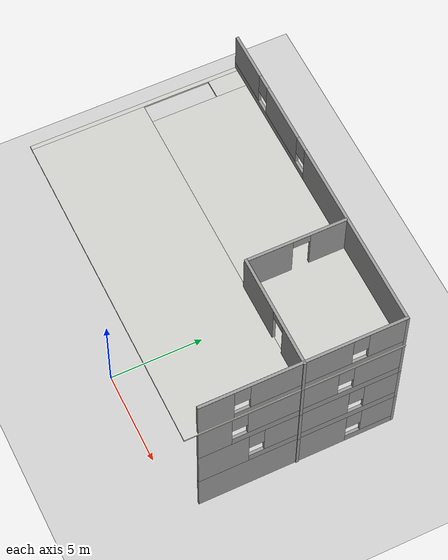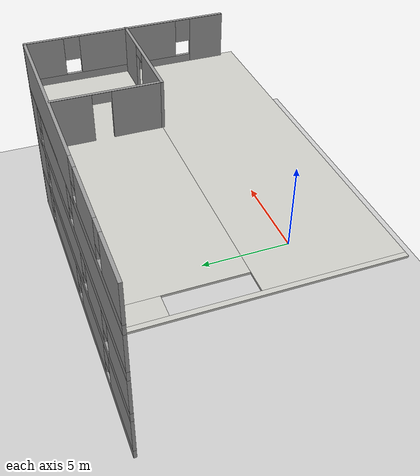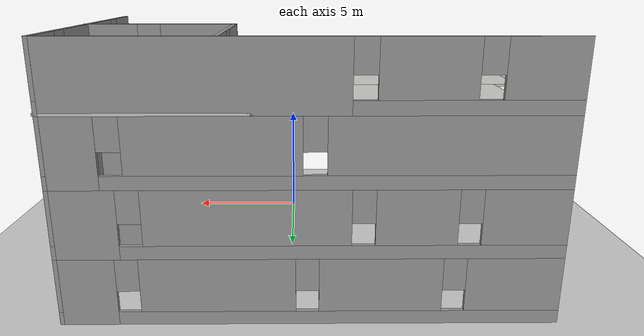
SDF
<sdf version="1.7">
 <world name="default">
  <model name="ground_plane">
   <static>1</static>
   <link name="link">
    <collision name="collision">
     <geometry><plane><normal>0 0 1</normal><size>100 100</size></plane></geometry>
     <surface>
      <contact><collide_bitmask>65535</collide_bitmask></contact>
      <friction><ode><mu>100</mu><mu2>50</mu2></ode></friction>
     </surface>
    </collision>
    <visual name="visual">
     <cast_shadows>0</cast_shadows>
     <geometry><plane><normal>0 0 1</normal><size>100 100</size></plane></geometry>
     <material>
      <script><uri>file://media/materials/scripts/gazebo.material</uri><name>Gazebo/Grey</name></script>
     </material>
    </visual>
   </link>
  </model>
  <model name="saglam_yeni_bina1">
   <pose>-0.684997 5.87917 0 0 -0 0</pose>
   <link name="Floor_6">
    <pose>0.000156 0.0375 7.5 0 -0 0</pose>
    <visual name="Floor_6_Visual_0">
     <pose>-8.65977 0 0.05 0 -0 0</pose>
     <geometry><box><size>0.226666 11.2072 0.1</size></box></geometry>
     <material>
      <script><uri>file://media/materials/scripts/gazebo.material</uri><name>Gazebo/CeilingTiled</name></script>
      <ambient>1 1 1 1</ambient>
     </material>
     <meta><layer>3</layer></meta>
    </visual>
    <collision name="Floor_6_Collision_0">
     <geometry><box><size>0.226666 11.2072 0.1</size></box></geometry>
     <pose>-8.65977 0 0.05 0 -0 0</pose>
    </collision>
    <visual name="Floor_6_Visual_1">
     <pose>0.113333 -2.62454 0.05 0 -0 0</pose>
     <geometry><box><size>17.3195 5.95813 0.1</size></box></geometry>
     <material>
      <script><uri>file://media/materials/scripts/gazebo.material</uri><name>Gazebo/CeilingTiled</name></script>
      <ambient>1 1 1 1</ambient>
     </material>
     <meta><layer>3</layer></meta>
    </visual>
    <collision name="Floor_6_Collision_1">
     <geometry><box><size>17.3195 5.95813 0.1</size></box></geometry>
     <pose>0.113333 -2.62454 0.05 0 -0 0</pose>
    </collision>
    <visual name="Floor_6_Visual_2">
     <pose>0.613333 2.97906 0.05 0 -0 0</pose>
     <geometry><box><size>16.3195 5.24907 0.1</size></box></geometry>
     <material>
      <script><uri>file://media/materials/scripts/gazebo.material</uri><name>Gazebo/CeilingTiled</name></script>
      <ambient>1 1 1 1</ambient>
     </material>
     <meta><layer>3</layer></meta>
    </visual>
    <collision name="Floor_6_Collision_2">
     <geometry><box><size>16.3195 5.24907 0.1</size></box></geometry>
     <pose>0.613333 2.97906 0.05 0 -0 0</pose>
    </collision>
    <visual name="Floor_6_Visual_3">
     <pose>-8.04644 4.72906 0.05 0 -0 0</pose>
     <geometry><box><size>1 1.74907 0.1</size></box></geometry>
     <material>
      <script><uri>file://media/materials/scripts/gazebo.material</uri><name>Gazebo/CeilingTiled</name></script>
      <ambient>1 1 1 1</ambient>
     </material>
     <meta><layer>3</layer></meta>
    </visual>
    <collision name="Floor_6_Collision_3">
     <geometry><box><size>1 1.74907 0.1</size></box></geometry>
     <pose>-8.04644 4.72906 0.05 0 -0 0</pose>
    </collision>
   </link>
   <link name="Wall_33">
    <pose>8.65205 0.3911 0 0 -0 1.5708</pose>
    <visual name="Wall_33_Visual_0">
     <pose>-1.34119 0 1.25 0 -0 0</pose>
     <geometry><box><size>7.81763 0.15 2.5</size></box></geometry>
     <material>
      <script><uri>file://media/materials/scripts/gazebo.material</uri><name>Gazebo/Grey</name></script>
      <ambient>1 1 1 1</ambient>
     </material>
     <meta><layer>0</layer></meta>
    </visual>
    <collision name="Wall_33_Collision_0">
     <geometry><box><size>7.81763 0.15 2.5</size></box></geometry>
     <pose>-1.34119 0 1.25 0 -0 0</pose>
    </collision>
    <visual name="Wall_33_Visual_1">
     <pose>3.90881 0 0.25 0 -0 0</pose>
     <geometry><box><size>2.68237 0.15 0.5</size></box></geometry>
     <material>
      <script><uri>file://media/materials/scripts/gazebo.material</uri><name>Gazebo/Grey</name></script>
      <ambient>1 1 1 1</ambient>
     </material>
     <meta><layer>0</layer></meta>
    </visual>
    <collision name="Wall_33_Collision_1">
     <geometry><box><size>2.68237 0.15 0.5</size></box></geometry>
     <pose>3.90881 0 0.25 0 -0 0</pose>
    </collision>
    <visual name="Wall_33_Visual_2">
     <pose>4.30881 0 1.5 0 -0 0</pose>
     <geometry><box><size>1.88237 0.15 2</size></box></geometry>
     <material>
      <script><uri>file://media/materials/scripts/gazebo.material</uri><name>Gazebo/Grey</name></script>
      <ambient>1 1 1 1</ambient>
     </material>
     <meta><layer>0</layer></meta>
    </visual>
    <collision name="Wall_33_Collision_2">
     <geometry><box><size>1.88237 0.15 2</size></box></geometry>
     <pose>4.30881 0 1.5 0 -0 0</pose>
    </collision>
    <visual name="Wall_33_Visual_3">
     <pose>2.96763 0 1.9 0 -0 0</pose>
     <geometry><box><size>0.8 0.15 1.2</size></box></geometry>
     <material>
      <script><uri>file://media/materials/scripts/gazebo.material</uri><name>Gazebo/Grey</name></script>
      <ambient>1 1 1 1</ambient>
     </material>
     <meta><layer>0</layer></meta>
    </visual>
    <collision name="Wall_33_Collision_3">
     <geometry><box><size>0.8 0.15 1.2</size></box></geometry>
     <pose>2.96763 0 1.9 0 -0 0</pose>
    </collision>
   </link>
   <link name="Wall_34">
    <pose>-0.022952 5.5661 0 0 -0 3.14159</pose>
    <visual name="Wall_34_Visual_0">
     <pose>-7.70483 0 1.25 0 -0 0</pose>
     <geometry><box><size>2.09034 0.15 2.5</size></box></geometry>
     <material>
      <script><uri>file://media/materials/scripts/gazebo.material</uri><name>Gazebo/Grey</name></script>
      <ambient>1 1 1 1</ambient>
     </material>
     <meta><layer>0</layer></meta>
    </visual>
    <collision name="Wall_34_Collision_0">
     <geometry><box><size>2.09034 0.15 2.5</size></box></geometry>
     <pose>-7.70483 0 1.25 0 -0 0</pose>
    </collision>
    <visual name="Wall_34_Visual_1">
     <pose>1.04517 0 0.25 0 -0 0</pose>
     <geometry><box><size>15.4097 0.15 0.5</size></box></geometry>
     <material>
      <script><uri>file://media/materials/scripts/gazebo.material</uri><name>Gazebo/Grey</name></script>
      <ambient>1 1 1 1</ambient>
     </material>
     <meta><layer>0</layer></meta>
    </visual>
    <collision name="Wall_34_Collision_1">
     <geometry><box><size>15.4097 0.15 0.5</size></box></geometry>
     <pose>1.04517 0 0.25 0 -0 0</pose>
    </collision>
    <visual name="Wall_34_Visual_2">
     <pose>-3.16502 0 1.5 0 -0 0</pose>
     <geometry><box><size>5.3893 0.15 2</size></box></geometry>
     <material>
      <script><uri>file://media/materials/scripts/gazebo.material</uri><name>Gazebo/Grey</name></script>
      <ambient>1 1 1 1</ambient>
     </material>
     <meta><layer>0</layer></meta>
    </visual>
    <collision name="Wall_34_Collision_2">
     <geometry><box><size>5.3893 0.15 2</size></box></geometry>
     <pose>-3.16502 0 1.5 0 -0 0</pose>
    </collision>
    <visual name="Wall_34_Visual_3">
     <pose>2.46883 0 1.5 0 -0 0</pose>
     <geometry><box><size>4.2784 0.15 2</size></box></geometry>
     <material>
      <script><uri>file://media/materials/scripts/gazebo.material</uri><name>Gazebo/Grey</name></script>
      <ambient>1 1 1 1</ambient>
     </material>
     <meta><layer>0</layer></meta>
    </visual>
    <collision name="Wall_34_Collision_3">
     <geometry><box><size>4.2784 0.15 2</size></box></geometry>
     <pose>2.46883 0 1.5 0 -0 0</pose>
    </collision>
    <visual name="Wall_34_Visual_4">
     <pose>7.07902 0 1.5 0 -0 0</pose>
     <geometry><box><size>3.34197 0.15 2</size></box></geometry>
     <material>
      <script><uri>file://media/materials/scripts/gazebo.material</uri><name>Gazebo/Grey</name></script>
      <ambient>1 1 1 1</ambient>
     </material>
     <meta><layer>0</layer></meta>
    </visual>
    <collision name="Wall_34_Collision_4">
     <geometry><box><size>3.34197 0.15 2</size></box></geometry>
     <pose>7.07902 0 1.5 0 -0 0</pose>
    </collision>
    <visual name="Wall_34_Visual_5">
     <pose>-6.25967 0 1.9 0 -0 0</pose>
     <geometry><box><size>0.8 0.15 1.2</size></box></geometry>
     <material>
      <script><uri>file://media/materials/scripts/gazebo.material</uri><name>Gazebo/Grey</name></script>
      <ambient>1 1 1 1</ambient>
     </material>
     <meta><layer>0</layer></meta>
    </visual>
    <collision name="Wall_34_Collision_5">
     <geometry><box><size>0.8 0.15 1.2</size></box></geometry>
     <pose>-6.25967 0 1.9 0 -0 0</pose>
    </collision>
    <visual name="Wall_34_Visual_6">
     <pose>-0.070366 0 1.9 0 -0 0</pose>
     <geometry><box><size>0.8 0.15 1.2</size></box></geometry>
     <material>
      <script><uri>file://media/materials/scripts/gazebo.material</uri><name>Gazebo/Grey</name></script>
      <ambient>1 1 1 1</ambient>
     </material>
     <meta><layer>0</layer></meta>
    </visual>
    <collision name="Wall_34_Collision_6">
     <geometry><box><size>0.8 0.15 1.2</size></box></geometry>
     <pose>-0.070366 0 1.9 0 -0 0</pose>
    </collision>
    <visual name="Wall_34_Visual_7">
     <pose>5.00803 0 1.9 0 -0 0</pose>
     <geometry><box><size>0.8 0.15 1.2</size></box></geometry>
     <material>
      <script><uri>file://media/materials/scripts/gazebo.material</uri><name>Gazebo/Grey</name></script>
      <ambient>1 1 1 1</ambient>
     </material>
     <meta><layer>0</layer></meta>
    </visual>
    <collision name="Wall_34_Collision_7">
     <geometry><box><size>0.8 0.15 1.2</size></box></geometry>
     <pose>5.00803 0 1.9 0 -0 0</pose>
    </collision>
   </link>
   <link name="Wall_43">
    <pose>2.84826 2.91988 0 0 -0 1.5708</pose>
    <visual name="Wall_43_Visual_0">
     <pose>-1.19905 0 1.25 0 -0 0</pose>
     <geometry><box><size>2.8519 0.15 2.5</size></box></geometry>
     <material>
      <script><uri>file://media/materials/scripts/gazebo.material</uri><name>Gazebo/Grey</name></script>
      <ambient>1 1 1 1</ambient>
     </material>
     <meta><layer>0</layer></meta>
    </visual>
    <collision name="Wall_43_Collision_0">
     <geometry><box><size>2.8519 0.15 2.5</size></box></geometry>
     <pose>-1.19905 0 1.25 0 -0 0</pose>
    </collision>
    <visual name="Wall_43_Visual_1">
     <pose>1.87595 0 1.25 0 -0 0</pose>
     <geometry><box><size>1.4981 0.15 2.5</size></box></geometry>
     <material>
      <script><uri>file://media/materials/scripts/gazebo.material</uri><name>Gazebo/Grey</name></script>
      <ambient>1 1 1 1</ambient>
     </material>
     <meta><layer>0</layer></meta>
    </visual>
    <collision name="Wall_43_Collision_1">
     <geometry><box><size>1.4981 0.15 2.5</size></box></geometry>
     <pose>1.87595 0 1.25 0 -0 0</pose>
    </collision>
    <visual name="Wall_43_Visual_2">
     <pose>0.6769 0 2.25 0 -0 0</pose>
     <geometry><box><size>0.9 0.15 0.5</size></box></geometry>
     <material>
      <script><uri>file://media/materials/scripts/gazebo.material</uri><name>Gazebo/Grey</name></script>
      <ambient>1 1 1 1</ambient>
     </material>
     <meta><layer>0</layer></meta>
    </visual>
    <collision name="Wall_43_Collision_2">
     <geometry><box><size>0.9 0.15 0.5</size></box></geometry>
     <pose>0.6769 0 2.25 0 -0 0</pose>
    </collision>
   </link>
   <link name="Wall_46">
    <pose>5.77326 0.369877 0 0 -0 0</pose>
    <visual name="Wall_46_Visual_0">
     <pose>-1.49327 0 1.25 0 -0 0</pose>
     <geometry><box><size>3.01345 0.15 2.5</size></box></geometry>
     <material>
      <script><uri>file://media/materials/scripts/gazebo.material</uri><name>Gazebo/Grey</name></script>
      <ambient>1 1 1 1</ambient>
     </material>
     <meta><layer>0</layer></meta>
    </visual>
    <collision name="Wall_46_Collision_0">
     <geometry><box><size>3.01345 0.15 2.5</size></box></geometry>
     <pose>-1.49327 0 1.25 0 -0 0</pose>
    </collision>
    <visual name="Wall_46_Visual_1">
     <pose>1.95673 0 1.25 0 -0 0</pose>
     <geometry><box><size>2.08655 0.15 2.5</size></box></geometry>
     <material>
      <script><uri>file://media/materials/scripts/gazebo.material</uri><name>Gazebo/Grey</name></script>
      <ambient>1 1 1 1</ambient>
     </material>
     <meta><layer>0</layer></meta>
    </visual>
    <collision name="Wall_46_Collision_1">
     <geometry><box><size>2.08655 0.15 2.5</size></box></geometry>
     <pose>1.95673 0 1.25 0 -0 0</pose>
    </collision>
    <visual name="Wall_46_Visual_2">
     <pose>0.463449 0 2.25 0 -0 0</pose>
     <geometry><box><size>0.9 0.15 0.5</size></box></geometry>
     <material>
      <script><uri>file://media/materials/scripts/gazebo.material</uri><name>Gazebo/Grey</name></script>
      <ambient>1 1 1 1</ambient>
     </material>
     <meta><layer>0</layer></meta>
    </visual>
    <collision name="Wall_46_Collision_2">
     <geometry><box><size>0.9 0.15 0.5</size></box></geometry>
     <pose>0.463449 0 2.25 0 -0 0</pose>
    </collision>
   </link>
   <link name="Wall_50">
    <pose>8.65205 0.3911 2.5 0 -0 1.5708</pose>
    <visual name="Wall_50_Visual_0">
     <pose>-3.95036 0 1.25 0 -0 0</pose>
     <geometry><box><size>2.59928 0.15 2.5</size></box></geometry>
     <material>
      <script><uri>file://media/materials/scripts/gazebo.material</uri><name>Gazebo/Grey</name></script>
      <ambient>1 1 1 1</ambient>
     </material>
     <meta><layer>1</layer></meta>
    </visual>
    <collision name="Wall_50_Collision_0">
     <geometry><box><size>2.59928 0.15 2.5</size></box></geometry>
     <pose>-3.95036 0 1.25 0 -0 0</pose>
    </collision>
    <visual name="Wall_50_Visual_1">
     <pose>1.29964 0 0.25 0 -0 0</pose>
     <geometry><box><size>7.90073 0.15 0.5</size></box></geometry>
     <material>
      <script><uri>file://media/materials/scripts/gazebo.material</uri><name>Gazebo/Grey</name></script>
      <ambient>1 1 1 1</ambient>
     </material>
     <meta><layer>1</layer></meta>
    </visual>
    <collision name="Wall_50_Collision_1">
     <geometry><box><size>7.90073 0.15 0.5</size></box></geometry>
     <pose>1.29964 0 0.25 0 -0 0</pose>
    </collision>
    <visual name="Wall_50_Visual_2">
     <pose>0.34812 0 1.5 0 -0 0</pose>
     <geometry><box><size>4.39769 0.15 2</size></box></geometry>
     <material>
      <script><uri>file://media/materials/scripts/gazebo.material</uri><name>Gazebo/Grey</name></script>
      <ambient>1 1 1 1</ambient>
     </material>
     <meta><layer>1</layer></meta>
    </visual>
    <collision name="Wall_50_Collision_2">
     <geometry><box><size>4.39769 0.15 2</size></box></geometry>
     <pose>0.34812 0 1.5 0 -0 0</pose>
    </collision>
    <visual name="Wall_50_Visual_3">
     <pose>4.29848 0 1.5 0 -0 0</pose>
     <geometry><box><size>1.90303 0.15 2</size></box></geometry>
     <material>
      <script><uri>file://media/materials/scripts/gazebo.material</uri><name>Gazebo/Grey</name></script>
      <ambient>1 1 1 1</ambient>
     </material>
     <meta><layer>1</layer></meta>
    </visual>
    <collision name="Wall_50_Collision_3">
     <geometry><box><size>1.90303 0.15 2</size></box></geometry>
     <pose>4.29848 0 1.5 0 -0 0</pose>
    </collision>
    <visual name="Wall_50_Visual_4">
     <pose>-2.25073 0 1.9 0 -0 0</pose>
     <geometry><box><size>0.8 0.15 1.2</size></box></geometry>
     <material>
      <script><uri>file://media/materials/scripts/gazebo.material</uri><name>Gazebo/Grey</name></script>
      <ambient>1 1 1 1</ambient>
     </material>
     <meta><layer>1</layer></meta>
    </visual>
    <collision name="Wall_50_Collision_4">
     <geometry><box><size>0.8 0.15 1.2</size></box></geometry>
     <pose>-2.25073 0 1.9 0 -0 0</pose>
    </collision>
    <visual name="Wall_50_Visual_5">
     <pose>2.94697 0 1.9 0 -0 0</pose>
     <geometry><box><size>0.8 0.15 1.2</size></box></geometry>
     <material>
      <script><uri>file://media/materials/scripts/gazebo.material</uri><name>Gazebo/Grey</name></script>
      <ambient>1 1 1 1</ambient>
     </material>
     <meta><layer>1</layer></meta>
    </visual>
    <collision name="Wall_50_Collision_5">
     <geometry><box><size>0.8 0.15 1.2</size></box></geometry>
     <pose>2.94697 0 1.9 0 -0 0</pose>
    </collision>
   </link>
   <link name="Wall_51">
    <pose>-0.022952 5.5661 2.5 0 -0 3.14159</pose>
    <visual name="Wall_51_Visual_0">
     <pose>-7.59041 0 1.25 0 -0 0</pose>
     <geometry><box><size>2.31918 0.15 2.5</size></box></geometry>
     <material>
      <script><uri>file://media/materials/scripts/gazebo.material</uri><name>Gazebo/Grey</name></script>
      <ambient>1 1 1 1</ambient>
     </material>
     <meta><layer>1</layer></meta>
    </visual>
    <collision name="Wall_51_Collision_0">
     <geometry><box><size>2.31918 0.15 2.5</size></box></geometry>
     <pose>-7.59041 0 1.25 0 -0 0</pose>
    </collision>
    <visual name="Wall_51_Visual_1">
     <pose>1.15959 0 0.25 0 -0 0</pose>
     <geometry><box><size>15.1808 0.15 0.5</size></box></geometry>
     <material>
      <script><uri>file://media/materials/scripts/gazebo.material</uri><name>Gazebo/Grey</name></script>
      <ambient>1 1 1 1</ambient>
     </material>
     <meta><layer>1</layer></meta>
    </visual>
    <collision name="Wall_51_Collision_1">
     <geometry><box><size>15.1808 0.15 0.5</size></box></geometry>
     <pose>1.15959 0 0.25 0 -0 0</pose>
    </collision>
    <visual name="Wall_51_Visual_2">
     <pose>-2.10161 0 1.5 0 -0 0</pose>
     <geometry><box><size>7.05841 0.15 2</size></box></geometry>
     <material>
      <script><uri>file://media/materials/scripts/gazebo.material</uri><name>Gazebo/Grey</name></script>
      <ambient>1 1 1 1</ambient>
     </material>
     <meta><layer>1</layer></meta>
    </visual>
    <collision name="Wall_51_Collision_2">
     <geometry><box><size>7.05841 0.15 2</size></box></geometry>
     <pose>-2.10161 0 1.5 0 -0 0</pose>
    </collision>
    <visual name="Wall_51_Visual_3">
     <pose>3.62203 0 1.5 0 -0 0</pose>
     <geometry><box><size>2.78888 0.15 2</size></box></geometry>
     <material>
      <script><uri>file://media/materials/scripts/gazebo.material</uri><name>Gazebo/Grey</name></script>
      <ambient>1 1 1 1</ambient>
     </material>
     <meta><layer>1</layer></meta>
    </visual>
    <collision name="Wall_51_Collision_3">
     <geometry><box><size>2.78888 0.15 2</size></box></geometry>
     <pose>3.62203 0 1.5 0 -0 0</pose>
    </collision>
    <visual name="Wall_51_Visual_4">
     <pose>7.28324 0 1.5 0 -0 0</pose>
     <geometry><box><size>2.93352 0.15 2</size></box></geometry>
     <material>
      <script><uri>file://media/materials/scripts/gazebo.material</uri><name>Gazebo/Grey</name></script>
      <ambient>1 1 1 1</ambient>
     </material>
     <meta><layer>1</layer></meta>
    </visual>
    <collision name="Wall_51_Collision_4">
     <geometry><box><size>2.93352 0.15 2</size></box></geometry>
     <pose>7.28324 0 1.5 0 -0 0</pose>
    </collision>
    <visual name="Wall_51_Visual_5">
     <pose>-6.03082 0 1.9 0 -0 0</pose>
     <geometry><box><size>0.8 0.15 1.2</size></box></geometry>
     <material>
      <script><uri>file://media/materials/scripts/gazebo.material</uri><name>Gazebo/Grey</name></script>
      <ambient>1 1 1 1</ambient>
     </material>
     <meta><layer>1</layer></meta>
    </visual>
    <collision name="Wall_51_Collision_5">
     <geometry><box><size>0.8 0.15 1.2</size></box></geometry>
     <pose>-6.03082 0 1.9 0 -0 0</pose>
    </collision>
    <visual name="Wall_51_Visual_6">
     <pose>1.82759 0 1.9 0 -0 0</pose>
     <geometry><box><size>0.8 0.15 1.2</size></box></geometry>
     <material>
      <script><uri>file://media/materials/scripts/gazebo.material</uri><name>Gazebo/Grey</name></script>
      <ambient>1 1 1 1</ambient>
     </material>
     <meta><layer>1</layer></meta>
    </visual>
    <collision name="Wall_51_Collision_6">
     <geometry><box><size>0.8 0.15 1.2</size></box></geometry>
     <pose>1.82759 0 1.9 0 -0 0</pose>
    </collision>
    <visual name="Wall_51_Visual_7">
     <pose>5.41648 0 1.9 0 -0 0</pose>
     <geometry><box><size>0.8 0.15 1.2</size></box></geometry>
     <material>
      <script><uri>file://media/materials/scripts/gazebo.material</uri><name>Gazebo/Grey</name></script>
      <ambient>1 1 1 1</ambient>
     </material>
     <meta><layer>1</layer></meta>
    </visual>
    <collision name="Wall_51_Collision_7">
     <geometry><box><size>0.8 0.15 1.2</size></box></geometry>
     <pose>5.41648 0 1.9 0 -0 0</pose>
    </collision>
   </link>
   <link name="Wall_56">
    <pose>2.84826 2.91988 2.5 0 -0 1.5708</pose>
    <visual name="Wall_56_Visual_0">
     <pose>-1.40575 0 1.25 0 -0 0</pose>
     <geometry><box><size>2.4385 0.15 2.5</size></box></geometry>
     <material>
      <script><uri>file://media/materials/scripts/gazebo.material</uri><name>Gazebo/Grey</name></script>
      <ambient>1 1 1 1</ambient>
     </material>
     <meta><layer>1</layer></meta>
    </visual>
    <collision name="Wall_56_Collision_0">
     <geometry><box><size>2.4385 0.15 2.5</size></box></geometry>
     <pose>-1.40575 0 1.25 0 -0 0</pose>
    </collision>
    <visual name="Wall_56_Visual_1">
     <pose>1.66925 0 1.25 0 -0 0</pose>
     <geometry><box><size>1.91151 0.15 2.5</size></box></geometry>
     <material>
      <script><uri>file://media/materials/scripts/gazebo.material</uri><name>Gazebo/Grey</name></script>
      <ambient>1 1 1 1</ambient>
     </material>
     <meta><layer>1</layer></meta>
    </visual>
    <collision name="Wall_56_Collision_1">
     <geometry><box><size>1.91151 0.15 2.5</size></box></geometry>
     <pose>1.66925 0 1.25 0 -0 0</pose>
    </collision>
    <visual name="Wall_56_Visual_2">
     <pose>0.263495 0 2.25 0 -0 0</pose>
     <geometry><box><size>0.9 0.15 0.5</size></box></geometry>
     <material>
      <script><uri>file://media/materials/scripts/gazebo.material</uri><name>Gazebo/Grey</name></script>
      <ambient>1 1 1 1</ambient>
     </material>
     <meta><layer>1</layer></meta>
    </visual>
    <collision name="Wall_56_Collision_2">
     <geometry><box><size>0.9 0.15 0.5</size></box></geometry>
     <pose>0.263495 0 2.25 0 -0 0</pose>
    </collision>
   </link>
   <link name="Wall_57">
    <pose>5.77326 0.369877 2.5 0 -0 0</pose>
    <visual name="Wall_57_Visual_0">
     <pose>-1.45301 0 1.25 0 -0 0</pose>
     <geometry><box><size>3.09399 0.15 2.5</size></box></geometry>
     <material>
      <script><uri>file://media/materials/scripts/gazebo.material</uri><name>Gazebo/Grey</name></script>
      <ambient>1 1 1 1</ambient>
     </material>
     <meta><layer>1</layer></meta>
    </visual>
    <collision name="Wall_57_Collision_0">
     <geometry><box><size>3.09399 0.15 2.5</size></box></geometry>
     <pose>-1.45301 0 1.25 0 -0 0</pose>
    </collision>
    <visual name="Wall_57_Visual_1">
     <pose>1.997 0 1.25 0 -0 0</pose>
     <geometry><box><size>2.00601 0.15 2.5</size></box></geometry>
     <material>
      <script><uri>file://media/materials/scripts/gazebo.material</uri><name>Gazebo/Grey</name></script>
      <ambient>1 1 1 1</ambient>
     </material>
     <meta><layer>1</layer></meta>
    </visual>
    <collision name="Wall_57_Collision_1">
     <geometry><box><size>2.00601 0.15 2.5</size></box></geometry>
     <pose>1.997 0 1.25 0 -0 0</pose>
    </collision>
    <visual name="Wall_57_Visual_2">
     <pose>0.54399 0 2.25 0 -0 0</pose>
     <geometry><box><size>0.9 0.15 0.5</size></box></geometry>
     <material>
      <script><uri>file://media/materials/scripts/gazebo.material</uri><name>Gazebo/Grey</name></script>
      <ambient>1 1 1 1</ambient>
     </material>
     <meta><layer>1</layer></meta>
    </visual>
    <collision name="Wall_57_Collision_2">
     <geometry><box><size>0.9 0.15 0.5</size></box></geometry>
     <pose>0.54399 0 2.25 0 -0 0</pose>
    </collision>
   </link>
   <link name="Wall_60">
    <pose>8.65205 0.3911 5 0 -0 1.5708</pose>
    <visual name="Wall_60_Visual_0">
     <pose>-4.39897 0 1.25 0 -0 0</pose>
     <geometry><box><size>1.70206 0.15 2.5</size></box></geometry>
     <material>
      <script><uri>file://media/materials/scripts/gazebo.material</uri><name>Gazebo/Grey</name></script>
      <ambient>1 1 1 1</ambient>
     </material>
     <meta><layer>2</layer></meta>
    </visual>
    <collision name="Wall_60_Collision_0">
     <geometry><box><size>1.70206 0.15 2.5</size></box></geometry>
     <pose>-4.39897 0 1.25 0 -0 0</pose>
    </collision>
    <visual name="Wall_60_Visual_1">
     <pose>0.851027 0 0.25 0 -0 0</pose>
     <geometry><box><size>8.79795 0.15 0.5</size></box></geometry>
     <material>
      <script><uri>file://media/materials/scripts/gazebo.material</uri><name>Gazebo/Grey</name></script>
      <ambient>1 1 1 1</ambient>
     </material>
     <meta><layer>2</layer></meta>
    </visual>
    <collision name="Wall_60_Collision_1">
     <geometry><box><size>8.79795 0.15 0.5</size></box></geometry>
     <pose>0.851027 0 0.25 0 -0 0</pose>
    </collision>
    <visual name="Wall_60_Visual_2">
     <pose>-0.440815 0 1.5 0 -0 0</pose>
     <geometry><box><size>4.61426 0.15 2</size></box></geometry>
     <material>
      <script><uri>file://media/materials/scripts/gazebo.material</uri><name>Gazebo/Grey</name></script>
      <ambient>1 1 1 1</ambient>
     </material>
     <meta><layer>2</layer></meta>
    </visual>
    <collision name="Wall_60_Collision_2">
     <geometry><box><size>4.61426 0.15 2</size></box></geometry>
     <pose>-0.440815 0 1.5 0 -0 0</pose>
    </collision>
    <visual name="Wall_60_Visual_3">
     <pose>3.95816 0 1.5 0 -0 0</pose>
     <geometry><box><size>2.58368 0.15 2</size></box></geometry>
     <material>
      <script><uri>file://media/materials/scripts/gazebo.material</uri><name>Gazebo/Grey</name></script>
      <ambient>1 1 1 1</ambient>
     </material>
     <meta><layer>2</layer></meta>
    </visual>
    <collision name="Wall_60_Collision_3">
     <geometry><box><size>2.58368 0.15 2</size></box></geometry>
     <pose>3.95816 0 1.5 0 -0 0</pose>
    </collision>
    <visual name="Wall_60_Visual_4">
     <pose>-3.14794 0 1.9 0 -0 0</pose>
     <geometry><box><size>0.8 0.15 1.2</size></box></geometry>
     <material>
      <script><uri>file://media/materials/scripts/gazebo.material</uri><name>Gazebo/Grey</name></script>
      <ambient>1 1 1 1</ambient>
     </material>
     <meta><layer>2</layer></meta>
    </visual>
    <collision name="Wall_60_Collision_4">
     <geometry><box><size>0.8 0.15 1.2</size></box></geometry>
     <pose>-3.14794 0 1.9 0 -0 0</pose>
    </collision>
    <visual name="Wall_60_Visual_5">
     <pose>2.26632 0 1.9 0 -0 0</pose>
     <geometry><box><size>0.8 0.15 1.2</size></box></geometry>
     <material>
      <script><uri>file://media/materials/scripts/gazebo.material</uri><name>Gazebo/Grey</name></script>
      <ambient>1 1 1 1</ambient>
     </material>
     <meta><layer>2</layer></meta>
    </visual>
    <collision name="Wall_60_Collision_5">
     <geometry><box><size>0.8 0.15 1.2</size></box></geometry>
     <pose>2.26632 0 1.9 0 -0 0</pose>
    </collision>
   </link>
   <link name="Wall_61">
    <pose>-0.022952 5.5661 5 0 -0 3.14159</pose>
    <visual name="Wall_61_Visual_0">
     <pose>-7.82245 0 1.25 0 -0 0</pose>
     <geometry><box><size>1.8551 0.15 2.5</size></box></geometry>
     <material>
      <script><uri>file://media/materials/scripts/gazebo.material</uri><name>Gazebo/Grey</name></script>
      <ambient>1 1 1 1</ambient>
     </material>
     <meta><layer>2</layer></meta>
    </visual>
    <collision name="Wall_61_Collision_0">
     <geometry><box><size>1.8551 0.15 2.5</size></box></geometry>
     <pose>-7.82245 0 1.25 0 -0 0</pose>
    </collision>
    <visual name="Wall_61_Visual_1">
     <pose>0.92755 0 0.25 0 -0 0</pose>
     <geometry><box><size>15.6449 0.15 0.5</size></box></geometry>
     <material>
      <script><uri>file://media/materials/scripts/gazebo.material</uri><name>Gazebo/Grey</name></script>
      <ambient>1 1 1 1</ambient>
     </material>
     <meta><layer>2</layer></meta>
    </visual>
    <collision name="Wall_61_Collision_1">
     <geometry><box><size>15.6449 0.15 0.5</size></box></geometry>
     <pose>0.92755 0 0.25 0 -0 0</pose>
    </collision>
    <visual name="Wall_61_Visual_2">
     <pose>-3.15353 0 1.5 0 -0 0</pose>
     <geometry><box><size>5.88274 0.15 2</size></box></geometry>
     <material>
      <script><uri>file://media/materials/scripts/gazebo.material</uri><name>Gazebo/Grey</name></script>
      <ambient>1 1 1 1</ambient>
     </material>
     <meta><layer>2</layer></meta>
    </visual>
    <collision name="Wall_61_Collision_2">
     <geometry><box><size>5.88274 0.15 2</size></box></geometry>
     <pose>-3.15353 0 1.5 0 -0 0</pose>
    </collision>
    <visual name="Wall_61_Visual_3">
     <pose>4.66892 0 1.5 0 -0 0</pose>
     <geometry><box><size>8.16216 0.15 2</size></box></geometry>
     <material>
      <script><uri>file://media/materials/scripts/gazebo.material</uri><name>Gazebo/Grey</name></script>
      <ambient>1 1 1 1</ambient>
     </material>
     <meta><layer>2</layer></meta>
    </visual>
    <collision name="Wall_61_Collision_3">
     <geometry><box><size>8.16216 0.15 2</size></box></geometry>
     <pose>4.66892 0 1.5 0 -0 0</pose>
    </collision>
    <visual name="Wall_61_Visual_4">
     <pose>-6.4949 0 1.9 0 -0 0</pose>
     <geometry><box><size>0.8 0.15 1.2</size></box></geometry>
     <material>
      <script><uri>file://media/materials/scripts/gazebo.material</uri><name>Gazebo/Grey</name></script>
      <ambient>1 1 1 1</ambient>
     </material>
     <meta><layer>2</layer></meta>
    </visual>
    <collision name="Wall_61_Collision_4">
     <geometry><box><size>0.8 0.15 1.2</size></box></geometry>
     <pose>-6.4949 0 1.9 0 -0 0</pose>
    </collision>
    <visual name="Wall_61_Visual_5">
     <pose>0.187845 0 1.9 0 -0 0</pose>
     <geometry><box><size>0.8 0.15 1.2</size></box></geometry>
     <material>
      <script><uri>file://media/materials/scripts/gazebo.material</uri><name>Gazebo/Grey</name></script>
      <ambient>1 1 1 1</ambient>
     </material>
     <meta><layer>2</layer></meta>
    </visual>
    <collision name="Wall_61_Collision_5">
     <geometry><box><size>0.8 0.15 1.2</size></box></geometry>
     <pose>0.187845 0 1.9 0 -0 0</pose>
    </collision>
   </link>
   <link name="Wall_66">
    <pose>2.84826 2.91988 5 0 -0 1.5708</pose>
    <visual name="Wall_66_Visual_0">
     <pose>-1.14277 0 1.25 0 -0 0</pose>
     <geometry><box><size>2.96445 0.15 2.5</size></box></geometry>
     <material>
      <script><uri>file://media/materials/scripts/gazebo.material</uri><name>Gazebo/Grey</name></script>
      <ambient>1 1 1 1</ambient>
     </material>
     <meta><layer>2</layer></meta>
    </visual>
    <collision name="Wall_66_Collision_0">
     <geometry><box><size>2.96445 0.15 2.5</size></box></geometry>
     <pose>-1.14277 0 1.25 0 -0 0</pose>
    </collision>
    <visual name="Wall_66_Visual_1">
     <pose>1.93223 0 1.25 0 -0 0</pose>
     <geometry><box><size>1.38555 0.15 2.5</size></box></geometry>
     <material>
      <script><uri>file://media/materials/scripts/gazebo.material</uri><name>Gazebo/Grey</name></script>
      <ambient>1 1 1 1</ambient>
     </material>
     <meta><layer>2</layer></meta>
    </visual>
    <collision name="Wall_66_Collision_1">
     <geometry><box><size>1.38555 0.15 2.5</size></box></geometry>
     <pose>1.93223 0 1.25 0 -0 0</pose>
    </collision>
    <visual name="Wall_66_Visual_2">
     <pose>0.789452 0 2.25 0 -0 0</pose>
     <geometry><box><size>0.9 0.15 0.5</size></box></geometry>
     <material>
      <script><uri>file://media/materials/scripts/gazebo.material</uri><name>Gazebo/Grey</name></script>
      <ambient>1 1 1 1</ambient>
     </material>
     <meta><layer>2</layer></meta>
    </visual>
    <collision name="Wall_66_Collision_2">
     <geometry><box><size>0.9 0.15 0.5</size></box></geometry>
     <pose>0.789452 0 2.25 0 -0 0</pose>
    </collision>
   </link>
   <link name="Wall_67">
    <collision name="Wall_67_Collision">
     <geometry><box><size>6 0.15 2.5</size></box></geometry>
     <pose>0 0 1.25 0 -0 0</pose>
    </collision>
    <visual name="Wall_67_Visual">
     <pose>0 0 1.25 0 -0 0</pose>
     <geometry><box><size>6 0.15 2.5</size></box></geometry>
     <material>
      <script><uri>file://media/materials/scripts/gazebo.material</uri><name>Gazebo/Grey</name></script>
      <ambient>1 1 1 1</ambient>
     </material>
     <meta><layer>2</layer></meta>
    </visual>
    <pose>5.77326 0.369877 5 0 -0 0</pose>
   </link>
   <link name="Wall_70">
    <pose>8.65205 0.3911 7.5 0 -0 1.5708</pose>
    <visual name="Wall_70_Visual_0">
     <pose>-4.35257 0 1.25 0 -0 0</pose>
     <geometry><box><size>1.79487 0.15 2.5</size></box></geometry>
     <material>
      <script><uri>file://media/materials/scripts/gazebo.material</uri><name>Gazebo/Grey</name></script>
      <ambient>1 1 1 1</ambient>
     </material>
     <meta><layer>3</layer></meta>
    </visual>
    <collision name="Wall_70_Collision_0">
     <geometry><box><size>1.79487 0.15 2.5</size></box></geometry>
     <pose>-4.35257 0 1.25 0 -0 0</pose>
    </collision>
    <visual name="Wall_70_Visual_1">
     <pose>0.897435 0 0.25 0 -0 0</pose>
     <geometry><box><size>8.70513 0.15 0.5</size></box></geometry>
     <material>
      <script><uri>file://media/materials/scripts/gazebo.material</uri><name>Gazebo/Grey</name></script>
      <ambient>1 1 1 1</ambient>
     </material>
     <meta><layer>3</layer></meta>
    </visual>
    <collision name="Wall_70_Collision_1">
     <geometry><box><size>8.70513 0.15 0.5</size></box></geometry>
     <pose>0.897435 0 0.25 0 -0 0</pose>
    </collision>
    <visual name="Wall_70_Visual_2">
     <pose>-0.10049 0 1.5 0 -0 0</pose>
     <geometry><box><size>5.10928 0.15 2</size></box></geometry>
     <material>
      <script><uri>file://media/materials/scripts/gazebo.material</uri><name>Gazebo/Grey</name></script>
      <ambient>1 1 1 1</ambient>
     </material>
     <meta><layer>3</layer></meta>
    </visual>
    <collision name="Wall_70_Collision_2">
     <geometry><box><size>5.10928 0.15 2</size></box></geometry>
     <pose>-0.10049 0 1.5 0 -0 0</pose>
    </collision>
    <visual name="Wall_70_Visual_3">
     <pose>4.25207 0 1.5 0 -0 0</pose>
     <geometry><box><size>1.99585 0.15 2</size></box></geometry>
     <material>
      <script><uri>file://media/materials/scripts/gazebo.material</uri><name>Gazebo/Grey</name></script>
      <ambient>1 1 1 1</ambient>
     </material>
     <meta><layer>3</layer></meta>
    </visual>
    <collision name="Wall_70_Collision_3">
     <geometry><box><size>1.99585 0.15 2</size></box></geometry>
     <pose>4.25207 0 1.5 0 -0 0</pose>
    </collision>
    <visual name="Wall_70_Visual_4">
     <pose>-3.05513 0 1.9 0 -0 0</pose>
     <geometry><box><size>0.8 0.15 1.2</size></box></geometry>
     <material>
      <script><uri>file://media/materials/scripts/gazebo.material</uri><name>Gazebo/Grey</name></script>
      <ambient>1 1 1 1</ambient>
     </material>
     <meta><layer>3</layer></meta>
    </visual>
    <collision name="Wall_70_Collision_4">
     <geometry><box><size>0.8 0.15 1.2</size></box></geometry>
     <pose>-3.05513 0 1.9 0 -0 0</pose>
    </collision>
    <visual name="Wall_70_Visual_5">
     <pose>2.85415 0 1.9 0 -0 0</pose>
     <geometry><box><size>0.8 0.15 1.2</size></box></geometry>
     <material>
      <script><uri>file://media/materials/scripts/gazebo.material</uri><name>Gazebo/Grey</name></script>
      <ambient>1 1 1 1</ambient>
     </material>
     <meta><layer>3</layer></meta>
    </visual>
    <collision name="Wall_70_Collision_5">
     <geometry><box><size>0.8 0.15 1.2</size></box></geometry>
     <pose>2.85415 0 1.9 0 -0 0</pose>
    </collision>
   </link>
   <link name="Wall_71">
    <pose>-0.022952 5.5661 7.5 0 -0 3.14159</pose>
    <visual name="Wall_71_Visual_0">
     <pose>-3.69214 0 1.25 0 -0 0</pose>
     <geometry><box><size>10.1157 0.15 2.5</size></box></geometry>
     <material>
      <script><uri>file://media/materials/scripts/gazebo.material</uri><name>Gazebo/Grey</name></script>
      <ambient>1 1 1 1</ambient>
     </material>
     <meta><layer>3</layer></meta>
    </visual>
    <collision name="Wall_71_Collision_0">
     <geometry><box><size>10.1157 0.15 2.5</size></box></geometry>
     <pose>-3.69214 0 1.25 0 -0 0</pose>
    </collision>
    <visual name="Wall_71_Visual_1">
     <pose>5.05786 0 0.25 0 -0 0</pose>
     <geometry><box><size>7.38428 0.15 0.5</size></box></geometry>
     <material>
      <script><uri>file://media/materials/scripts/gazebo.material</uri><name>Gazebo/Grey</name></script>
      <ambient>1 1 1 1</ambient>
     </material>
     <meta><layer>3</layer></meta>
    </visual>
    <collision name="Wall_71_Collision_1">
     <geometry><box><size>7.38428 0.15 0.5</size></box></geometry>
     <pose>5.05786 0 0.25 0 -0 0</pose>
    </collision>
    <visual name="Wall_71_Visual_2">
     <pose>3.76126 0 1.5 0 -0 0</pose>
     <geometry><box><size>3.19108 0.15 2</size></box></geometry>
     <material>
      <script><uri>file://media/materials/scripts/gazebo.material</uri><name>Gazebo/Grey</name></script>
      <ambient>1 1 1 1</ambient>
     </material>
     <meta><layer>3</layer></meta>
    </visual>
    <collision name="Wall_71_Collision_2">
     <geometry><box><size>3.19108 0.15 2</size></box></geometry>
     <pose>3.76126 0 1.5 0 -0 0</pose>
    </collision>
    <visual name="Wall_71_Visual_3">
     <pose>7.4534 0 1.5 0 -0 0</pose>
     <geometry><box><size>2.5932 0.15 2</size></box></geometry>
     <material>
      <script><uri>file://media/materials/scripts/gazebo.material</uri><name>Gazebo/Grey</name></script>
      <ambient>1 1 1 1</ambient>
     </material>
     <meta><layer>3</layer></meta>
    </visual>
    <collision name="Wall_71_Collision_3">
     <geometry><box><size>2.5932 0.15 2</size></box></geometry>
     <pose>7.4534 0 1.5 0 -0 0</pose>
    </collision>
    <visual name="Wall_71_Visual_4">
     <pose>1.76572 0 1.9 0 -0 0</pose>
     <geometry><box><size>0.8 0.15 1.2</size></box></geometry>
     <material>
      <script><uri>file://media/materials/scripts/gazebo.material</uri><name>Gazebo/Grey</name></script>
      <ambient>1 1 1 1</ambient>
     </material>
     <meta><layer>3</layer></meta>
    </visual>
    <collision name="Wall_71_Collision_4">
     <geometry><box><size>0.8 0.15 1.2</size></box></geometry>
     <pose>1.76572 0 1.9 0 -0 0</pose>
    </collision>
    <visual name="Wall_71_Visual_5">
     <pose>5.7568 0 1.9 0 -0 0</pose>
     <geometry><box><size>0.8 0.15 1.2</size></box></geometry>
     <material>
      <script><uri>file://media/materials/scripts/gazebo.material</uri><name>Gazebo/Grey</name></script>
      <ambient>1 1 1 1</ambient>
     </material>
     <meta><layer>3</layer></meta>
    </visual>
    <collision name="Wall_71_Collision_5">
     <geometry><box><size>0.8 0.15 1.2</size></box></geometry>
     <pose>5.7568 0 1.9 0 -0 0</pose>
    </collision>
   </link>
   <link name="Wall_76">
    <pose>2.84826 2.91988 7.5 0 -0 1.5708</pose>
    <visual name="Wall_76_Visual_0">
     <pose>-1.40575 0 1.25 0 -0 0</pose>
     <geometry><box><size>2.4385 0.15 2.5</size></box></geometry>
     <material>
      <script><uri>file://media/materials/scripts/gazebo.material</uri><name>Gazebo/Grey</name></script>
      <ambient>1 1 1 1</ambient>
     </material>
     <meta><layer>3</layer></meta>
    </visual>
    <collision name="Wall_76_Collision_0">
     <geometry><box><size>2.4385 0.15 2.5</size></box></geometry>
     <pose>-1.40575 0 1.25 0 -0 0</pose>
    </collision>
    <visual name="Wall_76_Visual_1">
     <pose>1.66925 0 1.25 0 -0 0</pose>
     <geometry><box><size>1.91151 0.15 2.5</size></box></geometry>
     <material>
      <script><uri>file://media/materials/scripts/gazebo.material</uri><name>Gazebo/Grey</name></script>
      <ambient>1 1 1 1</ambient>
     </material>
     <meta><layer>3</layer></meta>
    </visual>
    <collision name="Wall_76_Collision_1">
     <geometry><box><size>1.91151 0.15 2.5</size></box></geometry>
     <pose>1.66925 0 1.25 0 -0 0</pose>
    </collision>
    <visual name="Wall_76_Visual_2">
     <pose>0.263495 0 2.25 0 -0 0</pose>
     <geometry><box><size>0.9 0.15 0.5</size></box></geometry>
     <material>
      <script><uri>file://media/materials/scripts/gazebo.material</uri><name>Gazebo/Grey</name></script>
      <ambient>1 1 1 1</ambient>
     </material>
     <meta><layer>3</layer></meta>
    </visual>
    <collision name="Wall_76_Collision_2">
     <geometry><box><size>0.9 0.15 0.5</size></box></geometry>
     <pose>0.263495 0 2.25 0 -0 0</pose>
    </collision>
   </link>
   <link name="Wall_77">
    <pose>5.77326 0.369877 7.5 0 -0 0</pose>
    <visual name="Wall_77_Visual_0">
     <pose>-1.49941 0 1.25 0 -0 0</pose>
     <geometry><box><size>3.00117 0.15 2.5</size></box></geometry>
     <material>
      <script><uri>file://media/materials/scripts/gazebo.material</uri><name>Gazebo/Grey</name></script>
      <ambient>1 1 1 1</ambient>
     </material>
     <meta><layer>3</layer></meta>
    </visual>
    <collision name="Wall_77_Collision_0">
     <geometry><box><size>3.00117 0.15 2.5</size></box></geometry>
     <pose>-1.49941 0 1.25 0 -0 0</pose>
    </collision>
    <visual name="Wall_77_Visual_1">
     <pose>1.95059 0 1.25 0 -0 0</pose>
     <geometry><box><size>2.09883 0.15 2.5</size></box></geometry>
     <material>
      <script><uri>file://media/materials/scripts/gazebo.material</uri><name>Gazebo/Grey</name></script>
      <ambient>1 1 1 1</ambient>
     </material>
     <meta><layer>3</layer></meta>
    </visual>
    <collision name="Wall_77_Collision_1">
     <geometry><box><size>2.09883 0.15 2.5</size></box></geometry>
     <pose>1.95059 0 1.25 0 -0 0</pose>
    </collision>
    <visual name="Wall_77_Visual_2">
     <pose>0.451175 0 2.25 0 -0 0</pose>
     <geometry><box><size>0.9 0.15 0.5</size></box></geometry>
     <material>
      <script><uri>file://media/materials/scripts/gazebo.material</uri><name>Gazebo/Grey</name></script>
      <ambient>1 1 1 1</ambient>
     </material>
     <meta><layer>3</layer></meta>
    </visual>
    <collision name="Wall_77_Collision_2">
     <geometry><box><size>0.9 0.15 0.5</size></box></geometry>
     <pose>0.451175 0 2.25 0 -0 0</pose>
    </collision>
   </link>
   <link name="Wall_90">
    <collision name="Wall_90_Collision">
     <geometry><box><size>10.5 0.15 0.01</size></box></geometry>
     <pose>0 0 0.005 0 -0 0</pose>
    </collision>
    <visual name="Wall_90_Visual">
     <pose>0 0 0.005 0 -0 0</pose>
     <geometry><box><size>10.5 0.15 0.01</size></box></geometry>
     <material>
      <script><uri>file://media/materials/scripts/gazebo.material</uri><name>Gazebo/Grey</name></script>
      <ambient>1 1 1 1</ambient>
     </material>
     <meta><layer>4</layer></meta>
    </visual>
    <pose>8.65839 0.3909 10 0 -0 1.57205</pose>
   </link>
   <link name="Wall_96">
    <collision name="Wall_96_Collision">
     <geometry><box><size>5.25 0.15 0.01</size></box></geometry>
     <pose>0 0 0.005 0 -0 0</pose>
    </collision>
    <visual name="Wall_96_Visual">
     <pose>0 0 0.005 0 -0 0</pose>
     <geometry><box><size>5.25 0.15 0.01</size></box></geometry>
     <material>
      <script><uri>file://media/materials/scripts/gazebo.material</uri><name>Gazebo/Grey</name></script>
      <ambient>1 1 1 1</ambient>
     </material>
     <meta><layer>4</layer></meta>
    </visual>
    <pose>2.84789 2.9199 10 0 -0 1.5708</pose>
   </link>
   <link name="Wall_97">
    <collision name="Wall_97_Collision">
     <geometry><box><size>6 0.15 0.01</size></box></geometry>
     <pose>0 0 0.005 0 -0 0</pose>
    </collision>
    <visual name="Wall_97_Visual">
     <pose>0 0 0.005 0 -0 0</pose>
     <geometry><box><size>6 0.15 0.01</size></box></geometry>
     <material>
      <script><uri>file://media/materials/scripts/gazebo.material</uri><name>Gazebo/Grey</name></script>
      <ambient>1 1 1 1</ambient>
     </material>
     <meta><layer>4</layer></meta>
    </visual>
    <pose>5.77289 0.3699 10 0 -0 0</pose>
   </link>
   <static>1</static>
  </model>
 </world>
</sdf>
